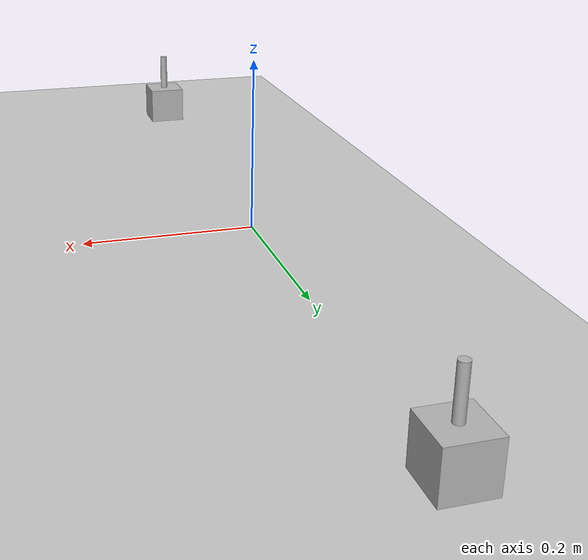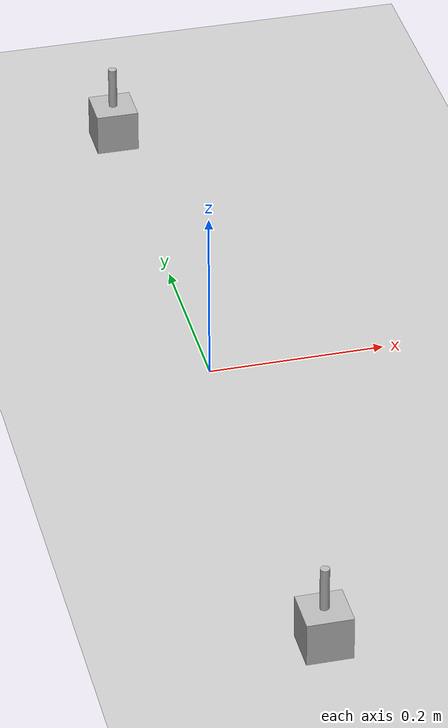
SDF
<sdf version="1.5">
 <world name="default">
  <include><uri>model://sun</uri></include>
  <model name="AP1">
   <static>true</static>
   <pose>0 0.5 0.025 0 0 0</pose>
   <link name="AP1_link">
    <inertial><mass>0.1</mass></inertial>
    <visual name="base"><geometry><box><size>.05 .05 .05</size></box></geometry></visual>
    <visual name="antenna">
     <pose>0 0 .04 0 0 0</pose>
     <geometry><cylinder><radius>.005</radius><length>.07</length></cylinder></geometry>
    </visual>
    <sensor name="wirelessTransmitter" type="wireless_transmitter">
     <always_on>1</always_on>
     <update_rate>1</update_rate>
     <visualize>true</visualize>
     <transceiver><essid>GCS1</essid><frequency>2412.0</frequency><power>15</power><gain>5</gain></transceiver>
    </sensor>
   </link>
  </model>
  <model name="AP2">
   <static>true</static>
   <pose>0 -0.5 0.025 0 0 0</pose>
   <link name="AP2_link">
    <inertial><mass>0.1</mass></inertial>
    <visual name="base"><geometry><box><size>.05 .05 .05</size></box></geometry></visual>
    <visual name="antenna">
     <pose>0 0 .04 0 0 0</pose>
     <geometry><cylinder><radius>.005</radius><length>.07</length></cylinder></geometry>
    </visual>
    <sensor name="wirelessTransmitter" type="wireless_transmitter">
     <always_on>1</always_on>
     <update_rate>1</update_rate>
     <visualize>true</visualize>
     <transceiver><essid>GCS2</essid><frequency>2480.0</frequency><power>20</power><gain>5</gain></transceiver>
    </sensor>
   </link>
  </model>
  <include><uri>model://asphalt_plane</uri></include>
  <physics name="default_physics" default="0" type="ode">
   <gravity>0 0 -9.8066</gravity>
   <ode>
    <solver>
     <type>quick</type>
     <iters>10</iters>
     <sor>1.3</sor>
     <use_dynamic_moi_rescaling>0</use_dynamic_moi_rescaling>
    </solver>
    <constraints>
     <cfm>0</cfm>
     <erp>0.2</erp>
     <contact_max_correcting_vel>100</contact_max_correcting_vel>
     <contact_surface_layer>0.001</contact_surface_layer>
    </constraints>
   </ode>
   <max_step_size>0.002</max_step_size>
   <real_time_factor>1</real_time_factor>
   <real_time_update_rate>500</real_time_update_rate>
   <magnetic_field>6.0e-6 2.3e-5 -4.2e-5</magnetic_field>
  </physics>
 </world>
</sdf>
